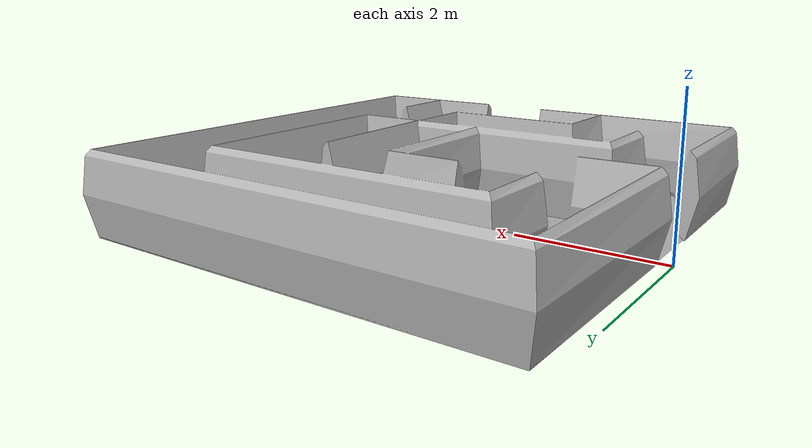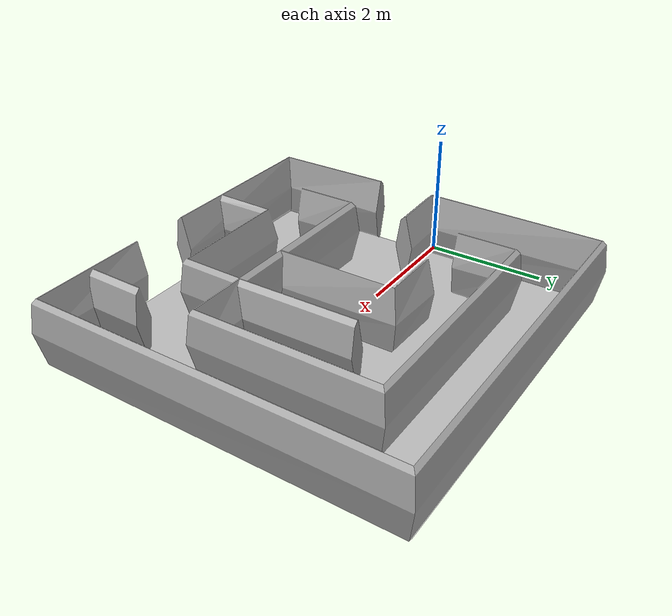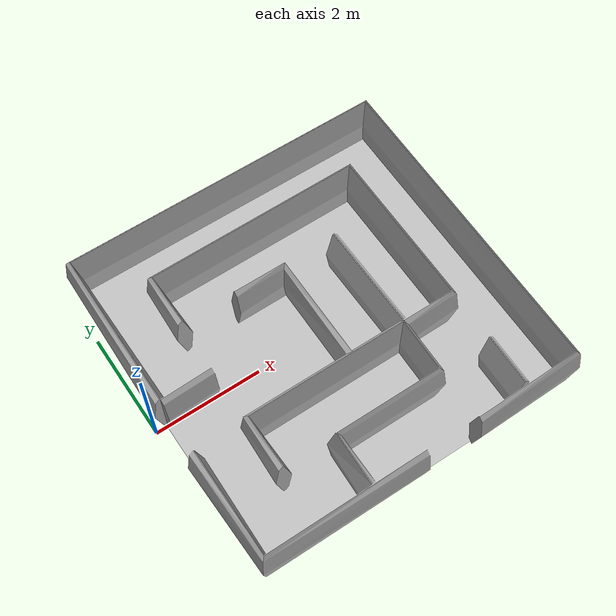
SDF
<?xml version="1.0" ?>
<sdf version="1.5">
  <model name="my_maze_gsf">
    <static>true</static>
    <link name="maze_link">
      <pose>3.2 0 0 0 0 0</pose>
        <collision name="maze_collision">
         <geometry>
            <mesh>
              <uri>model://my_maze/meshes/maze.dae</uri>
          </mesh>
        </geometry>
      </collision>

      <visual name="maze_mesh">
        <cast_shadows>true</cast_shadows>
        <geometry>
            <mesh>
                <uri>model://my_maze/meshes/maze.dae</uri>
            </mesh>
        </geometry>
      </visual>
    </link>
  </model>
</sdf>
